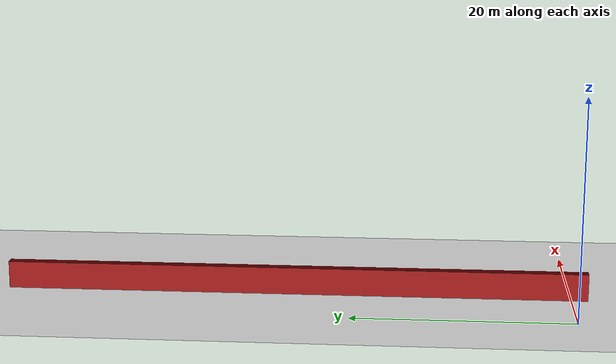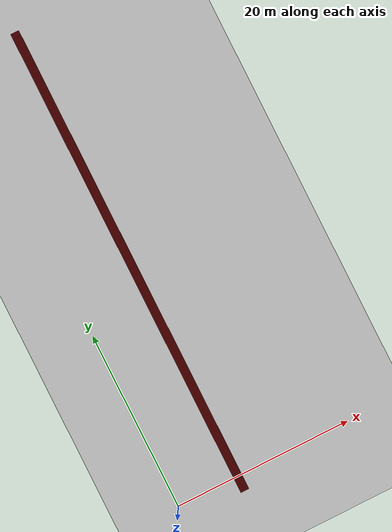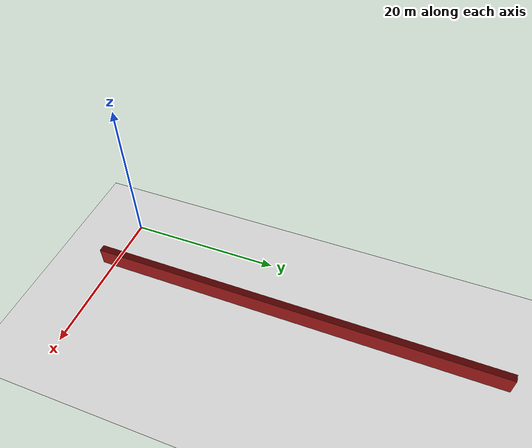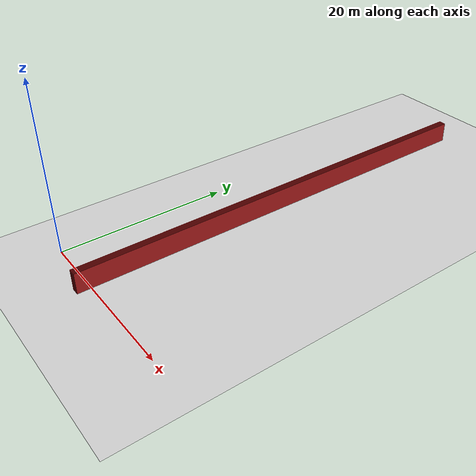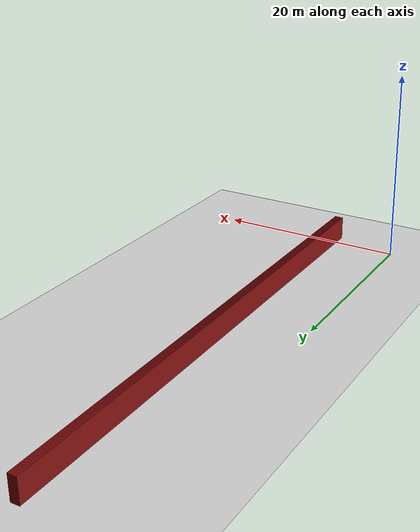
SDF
<sdf version="1.4">
 <world name="1_wall">
  <model name="ground_plane">
   <static>1</static>
   <link name="link">
    <collision name="collision">
     <geometry><plane><normal>0 0 1</normal><size>1000 1000</size></plane></geometry>
     <surface><friction><ode><mu>100</mu><mu2>50</mu2></ode></friction></surface>
    </collision>
    <visual name="visual">
     <cast_shadows>0</cast_shadows>
     <geometry><plane><normal>0 0 1</normal><size>10000 10000</size></plane></geometry>
     <material>
      <script><uri>file://media/materials/scripts/gazebo.material</uri><name>Gazebo/Grey</name></script>
     </material>
    </visual>
    <velocity_decay><linear>0</linear><angular>0</angular></velocity_decay>
   </link>
  </model>
  <model name="Wall_162">
   <static>1</static>
   <link name="Wall_162">
    <collision name="Wall_Collision_162">
     <geometry><box><size>53.65 0.05 2.5</size></box></geometry>
     <pose>0 0 1.25 0 -0 0</pose>
    </collision>
    <visual name="Wall_Visual_162">
     <pose>0 0 1.25 0 -0 0</pose>
     <geometry><box><size>53.65 0.05 2.5</size></box></geometry>
     <material>
      <script><uri>file://media/materials/scripts/gazebo.material</uri><name>Gazebo/Red</name></script>
     </material>
    </visual>
    <velocity_decay><linear>0</linear><angular>0</angular></velocity_decay>
    <pose>6.6 25.3 0 0 0 1.5707963267948966</pose>
   </link>
  </model>
  <model name="Wall_163">
   <static>1</static>
   <link name="Wall_163">
    <collision name="Wall_Collision_163">
     <geometry><box><size>53.65 0.05 2.5</size></box></geometry>
     <pose>0 0 1.25 0 -0 0</pose>
    </collision>
    <visual name="Wall_Visual_163">
     <pose>0 0 1.25 0 -0 0</pose>
     <geometry><box><size>53.65 0.05 2.5</size></box></geometry>
     <material>
      <script><uri>file://media/materials/scripts/gazebo.material</uri><name>Gazebo/Red</name></script>
     </material>
    </visual>
    <velocity_decay><linear>0</linear><angular>0</angular></velocity_decay>
    <pose>6.65 25.3 0 0 0 1.5707963267948966</pose>
   </link>
  </model>
  <model name="Wall_164">
   <static>1</static>
   <link name="Wall_164">
    <collision name="Wall_Collision_164">
     <geometry><box><size>53.65 0.05 2.5</size></box></geometry>
     <pose>0 0 1.25 0 -0 0</pose>
    </collision>
    <visual name="Wall_Visual_164">
     <pose>0 0 1.25 0 -0 0</pose>
     <geometry><box><size>53.65 0.05 2.5</size></box></geometry>
     <material>
      <script><uri>file://media/materials/scripts/gazebo.material</uri><name>Gazebo/Red</name></script>
     </material>
    </visual>
    <velocity_decay><linear>0</linear><angular>0</angular></velocity_decay>
    <pose>6.7 25.3 0 0 0 1.5707963267948966</pose>
   </link>
  </model>
  <model name="Wall_165">
   <static>1</static>
   <link name="Wall_165">
    <collision name="Wall_Collision_165">
     <geometry><box><size>53.65 0.05 2.5</size></box></geometry>
     <pose>0 0 1.25 0 -0 0</pose>
    </collision>
    <visual name="Wall_Visual_165">
     <pose>0 0 1.25 0 -0 0</pose>
     <geometry><box><size>53.65 0.05 2.5</size></box></geometry>
     <material>
      <script><uri>file://media/materials/scripts/gazebo.material</uri><name>Gazebo/Red</name></script>
     </material>
    </visual>
    <velocity_decay><linear>0</linear><angular>0</angular></velocity_decay>
    <pose>6.75 25.3 0 0 0 1.5707963267948966</pose>
   </link>
  </model>
  <model name="Wall_166">
   <static>1</static>
   <link name="Wall_166">
    <collision name="Wall_Collision_166">
     <geometry><box><size>53.65 0.05 2.5</size></box></geometry>
     <pose>0 0 1.25 0 -0 0</pose>
    </collision>
    <visual name="Wall_Visual_166">
     <pose>0 0 1.25 0 -0 0</pose>
     <geometry><box><size>53.65 0.05 2.5</size></box></geometry>
     <material>
      <script><uri>file://media/materials/scripts/gazebo.material</uri><name>Gazebo/Red</name></script>
     </material>
    </visual>
    <velocity_decay><linear>0</linear><angular>0</angular></velocity_decay>
    <pose>6.8 25.3 0 0 0 1.5707963267948966</pose>
   </link>
  </model>
  <model name="Wall_167">
   <static>1</static>
   <link name="Wall_167">
    <collision name="Wall_Collision_167">
     <geometry><box><size>53.65 0.05 2.5</size></box></geometry>
     <pose>0 0 1.25 0 -0 0</pose>
    </collision>
    <visual name="Wall_Visual_167">
     <pose>0 0 1.25 0 -0 0</pose>
     <geometry><box><size>53.65 0.05 2.5</size></box></geometry>
     <material>
      <script><uri>file://media/materials/scripts/gazebo.material</uri><name>Gazebo/Red</name></script>
     </material>
    </visual>
    <velocity_decay><linear>0</linear><angular>0</angular></velocity_decay>
    <pose>6.85 25.3 0 0 0 1.5707963267948966</pose>
   </link>
  </model>
  <model name="Wall_168">
   <static>1</static>
   <link name="Wall_168">
    <collision name="Wall_Collision_168">
     <geometry><box><size>53.65 0.05 2.5</size></box></geometry>
     <pose>0 0 1.25 0 -0 0</pose>
    </collision>
    <visual name="Wall_Visual_168">
     <pose>0 0 1.25 0 -0 0</pose>
     <geometry><box><size>53.65 0.05 2.5</size></box></geometry>
     <material>
      <script><uri>file://media/materials/scripts/gazebo.material</uri><name>Gazebo/Red</name></script>
     </material>
    </visual>
    <velocity_decay><linear>0</linear><angular>0</angular></velocity_decay>
    <pose>6.9 25.3 0 0 0 1.5707963267948966</pose>
   </link>
  </model>
  <model name="Wall_169">
   <static>1</static>
   <link name="Wall_169">
    <collision name="Wall_Collision_169">
     <geometry><box><size>53.65 0.05 2.5</size></box></geometry>
     <pose>0 0 1.25 0 -0 0</pose>
    </collision>
    <visual name="Wall_Visual_169">
     <pose>0 0 1.25 0 -0 0</pose>
     <geometry><box><size>53.65 0.05 2.5</size></box></geometry>
     <material>
      <script><uri>file://media/materials/scripts/gazebo.material</uri><name>Gazebo/Red</name></script>
     </material>
    </visual>
    <velocity_decay><linear>0</linear><angular>0</angular></velocity_decay>
    <pose>6.95 25.3 0 0 0 1.5707963267948966</pose>
   </link>
  </model>
  <model name="Wall_170">
   <static>1</static>
   <link name="Wall_170">
    <collision name="Wall_Collision_170">
     <geometry><box><size>53.65 0.05 2.5</size></box></geometry>
     <pose>0 0 1.25 0 -0 0</pose>
    </collision>
    <visual name="Wall_Visual_170">
     <pose>0 0 1.25 0 -0 0</pose>
     <geometry><box><size>53.65 0.05 2.5</size></box></geometry>
     <material>
      <script><uri>file://media/materials/scripts/gazebo.material</uri><name>Gazebo/Red</name></script>
     </material>
    </visual>
    <velocity_decay><linear>0</linear><angular>0</angular></velocity_decay>
    <pose>7.0 25.3 0 0 0 1.5707963267948966</pose>
   </link>
  </model>
  <model name="Wall_171">
   <static>1</static>
   <link name="Wall_171">
    <collision name="Wall_Collision_171">
     <geometry><box><size>53.65 0.05 2.5</size></box></geometry>
     <pose>0 0 1.25 0 -0 0</pose>
    </collision>
    <visual name="Wall_Visual_171">
     <pose>0 0 1.25 0 -0 0</pose>
     <geometry><box><size>53.65 0.05 2.5</size></box></geometry>
     <material>
      <script><uri>file://media/materials/scripts/gazebo.material</uri><name>Gazebo/Red</name></script>
     </material>
    </visual>
    <velocity_decay><linear>0</linear><angular>0</angular></velocity_decay>
    <pose>7.05 25.3 0 0 0 1.5707963267948966</pose>
   </link>
  </model>
  <model name="Wall_172">
   <static>1</static>
   <link name="Wall_172">
    <collision name="Wall_Collision_172">
     <geometry><box><size>53.65 0.05 2.5</size></box></geometry>
     <pose>0 0 1.25 0 -0 0</pose>
    </collision>
    <visual name="Wall_Visual_172">
     <pose>0 0 1.25 0 -0 0</pose>
     <geometry><box><size>53.65 0.05 2.5</size></box></geometry>
     <material>
      <script><uri>file://media/materials/scripts/gazebo.material</uri><name>Gazebo/Red</name></script>
     </material>
    </visual>
    <velocity_decay><linear>0</linear><angular>0</angular></velocity_decay>
    <pose>7.1 25.3 0 0 0 1.5707963267948966</pose>
   </link>
  </model>
  <model name="Wall_173">
   <static>1</static>
   <link name="Wall_173">
    <collision name="Wall_Collision_173">
     <geometry><box><size>53.65 0.05 2.5</size></box></geometry>
     <pose>0 0 1.25 0 -0 0</pose>
    </collision>
    <visual name="Wall_Visual_173">
     <pose>0 0 1.25 0 -0 0</pose>
     <geometry><box><size>53.65 0.05 2.5</size></box></geometry>
     <material>
      <script><uri>file://media/materials/scripts/gazebo.material</uri><name>Gazebo/Red</name></script>
     </material>
    </visual>
    <velocity_decay><linear>0</linear><angular>0</angular></velocity_decay>
    <pose>7.15 25.3 0 0 0 1.5707963267948966</pose>
   </link>
  </model>
  <model name="Wall_174">
   <static>1</static>
   <link name="Wall_174">
    <collision name="Wall_Collision_174">
     <geometry><box><size>53.65 0.05 2.5</size></box></geometry>
     <pose>0 0 1.25 0 -0 0</pose>
    </collision>
    <visual name="Wall_Visual_174">
     <pose>0 0 1.25 0 -0 0</pose>
     <geometry><box><size>53.65 0.05 2.5</size></box></geometry>
     <material>
      <script><uri>file://media/materials/scripts/gazebo.material</uri><name>Gazebo/Red</name></script>
     </material>
    </visual>
    <velocity_decay><linear>0</linear><angular>0</angular></velocity_decay>
    <pose>7.2 25.3 0 0 0 1.5707963267948966</pose>
   </link>
  </model>
  <model name="Wall_175">
   <static>1</static>
   <link name="Wall_175">
    <collision name="Wall_Collision_175">
     <geometry><box><size>53.65 0.05 2.5</size></box></geometry>
     <pose>0 0 1.25 0 -0 0</pose>
    </collision>
    <visual name="Wall_Visual_175">
     <pose>0 0 1.25 0 -0 0</pose>
     <geometry><box><size>53.65 0.05 2.5</size></box></geometry>
     <material>
      <script><uri>file://media/materials/scripts/gazebo.material</uri><name>Gazebo/Red</name></script>
     </material>
    </visual>
    <velocity_decay><linear>0</linear><angular>0</angular></velocity_decay>
    <pose>7.25 25.3 0 0 0 1.5707963267948966</pose>
   </link>
  </model>
  <model name="Wall_176">
   <static>1</static>
   <link name="Wall_176">
    <collision name="Wall_Collision_176">
     <geometry><box><size>53.65 0.05 2.5</size></box></geometry>
     <pose>0 0 1.25 0 -0 0</pose>
    </collision>
    <visual name="Wall_Visual_176">
     <pose>0 0 1.25 0 -0 0</pose>
     <geometry><box><size>53.65 0.05 2.5</size></box></geometry>
     <material>
      <script><uri>file://media/materials/scripts/gazebo.material</uri><name>Gazebo/Red</name></script>
     </material>
    </visual>
    <velocity_decay><linear>0</linear><angular>0</angular></velocity_decay>
    <pose>7.3 25.3 0 0 0 1.5707963267948966</pose>
   </link>
  </model>
  <model name="Wall_177">
   <static>1</static>
   <link name="Wall_177">
    <collision name="Wall_Collision_177">
     <geometry><box><size>53.65 0.05 2.5</size></box></geometry>
     <pose>0 0 1.25 0 -0 0</pose>
    </collision>
    <visual name="Wall_Visual_177">
     <pose>0 0 1.25 0 -0 0</pose>
     <geometry><box><size>53.65 0.05 2.5</size></box></geometry>
     <material>
      <script><uri>file://media/materials/scripts/gazebo.material</uri><name>Gazebo/Red</name></script>
     </material>
    </visual>
    <velocity_decay><linear>0</linear><angular>0</angular></velocity_decay>
    <pose>7.35 25.3 0 0 0 1.5707963267948966</pose>
   </link>
  </model>
  <model name="Wall_178">
   <static>1</static>
   <link name="Wall_178">
    <collision name="Wall_Collision_178">
     <geometry><box><size>53.65 0.05 2.5</size></box></geometry>
     <pose>0 0 1.25 0 -0 0</pose>
    </collision>
    <visual name="Wall_Visual_178">
     <pose>0 0 1.25 0 -0 0</pose>
     <geometry><box><size>53.65 0.05 2.5</size></box></geometry>
     <material>
      <script><uri>file://media/materials/scripts/gazebo.material</uri><name>Gazebo/Red</name></script>
     </material>
    </visual>
    <velocity_decay><linear>0</linear><angular>0</angular></velocity_decay>
    <pose>7.4 25.3 0 0 0 1.5707963267948966</pose>
   </link>
  </model>
  <model name="Wall_179">
   <static>1</static>
   <link name="Wall_179">
    <collision name="Wall_Collision_179">
     <geometry><box><size>53.65 0.05 2.5</size></box></geometry>
     <pose>0 0 1.25 0 -0 0</pose>
    </collision>
    <visual name="Wall_Visual_179">
     <pose>0 0 1.25 0 -0 0</pose>
     <geometry><box><size>53.65 0.05 2.5</size></box></geometry>
     <material>
      <script><uri>file://media/materials/scripts/gazebo.material</uri><name>Gazebo/Red</name></script>
     </material>
    </visual>
    <velocity_decay><linear>0</linear><angular>0</angular></velocity_decay>
    <pose>7.45 25.3 0 0 0 1.5707963267948966</pose>
   </link>
  </model>
 </world>
</sdf>
